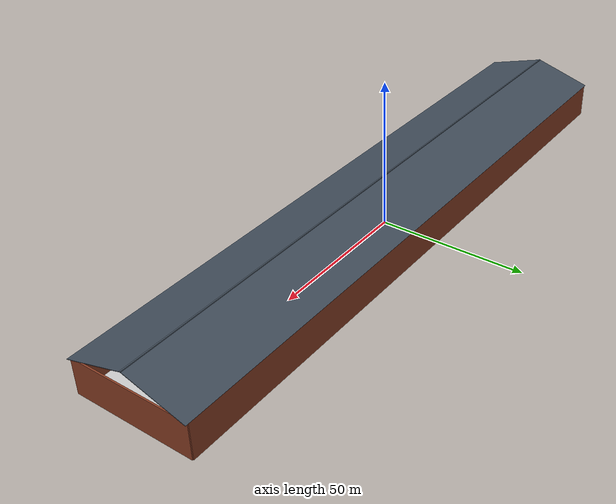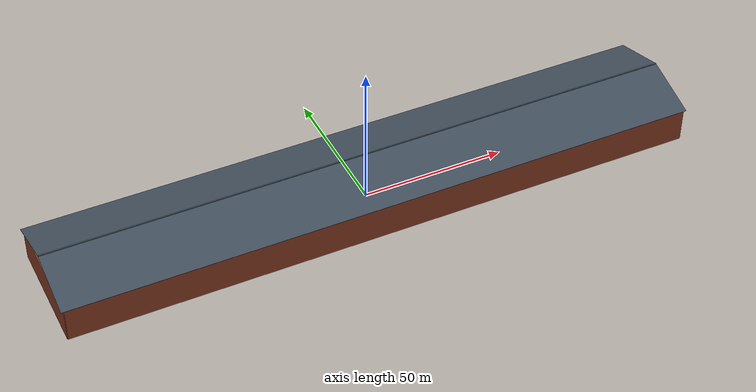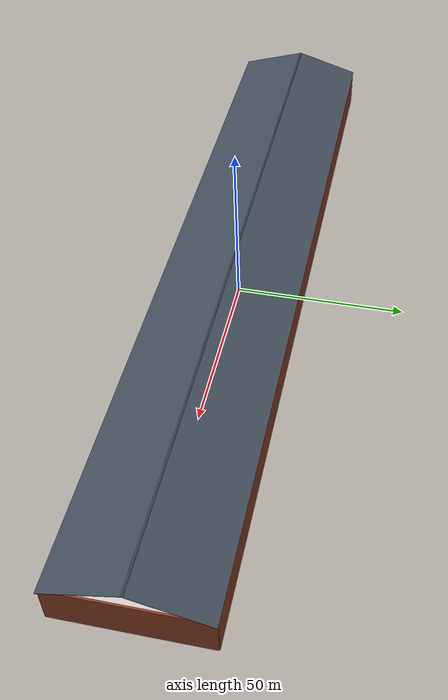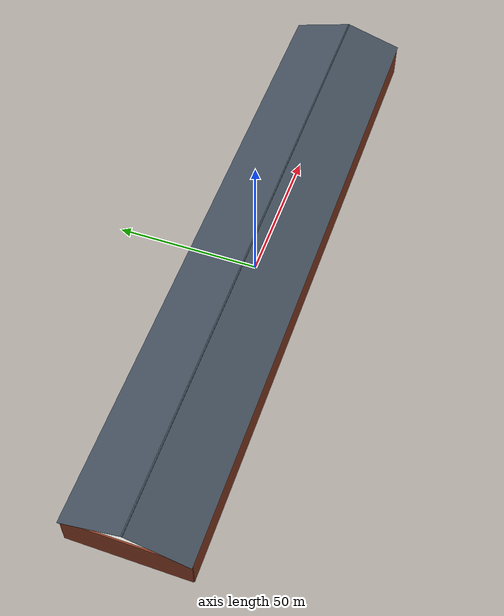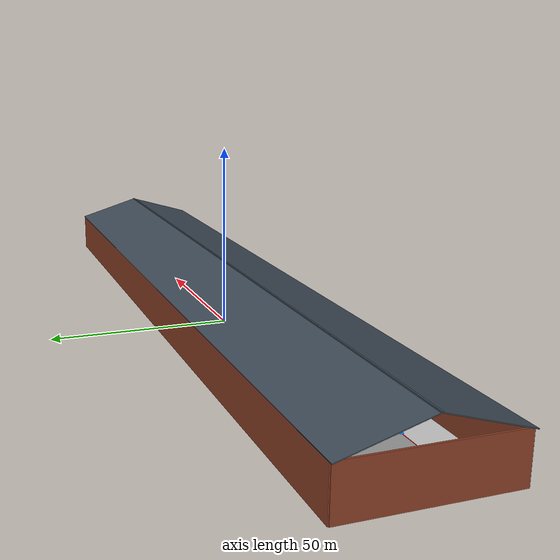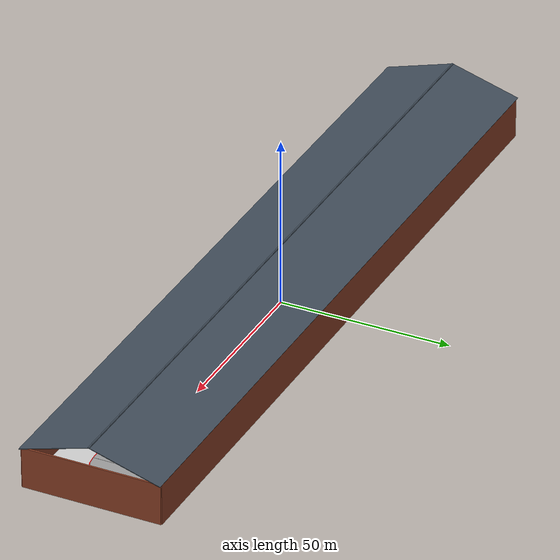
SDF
<sdf version="1.8">
 <world name="vector_logistics_world">
  <physics name="1ms" type="ignored">
   <max_step_size>0.001</max_step_size>
   <real_time_factor>1.0</real_time_factor>
  </physics>
  <plugin filename="gz-sim-physics-system" name="gz::sim::systems::Physics"/>
  <plugin filename="gz-sim-sensors-system" name="gz::sim::systems::Sensors"/>
  <plugin filename="gz-sim-user-commands-system" name="gz::sim::systems::UserCommands"/>
  <plugin filename="gz-sim-scene-broadcaster-system" name="gz::sim::systems::SceneBroadcaster"/>
  <scene>
   <ambient>0.5 0.5 0.5 1</ambient>
   <background>0.5 0.5 0.5 1</background>
   <grid>false</grid>
   <shadows>true</shadows>
  </scene>
  <light type="directional" name="sun">
   <pose>0 0 20 0 0 0</pose>
   <diffuse>0.8 0.8 0.8 1</diffuse>
   <specular>0.5 0.5 0.5 1</specular>
   <direction>-0.5 0.1 -0.9</direction>
  </light>
  <model name="concrete_floor">
   <static>true</static>
   <link name="link">
    <visual name="visual">
     <geometry><box><size>220 40 0.001</size></box></geometry>
     <material>
      <ambient>0.7 0.7 0.7 1</ambient>
      <diffuse>0.8 0.8 0.8 1</diffuse>
      <specular>0.1 0.1 0.1 1</specular>
     </material>
    </visual>
    <collision name="collision"><geometry><box><size>220 40 0.001</size></box></geometry></collision>
   </link>
  </model>
  <model name="left_red_curve">
   <static>true</static>
   <pose>-90 0 0.001 0 0 0</pose>
   <link name="link">
    <visual name="visual">
     <geometry><cylinder><radius>10.1</radius><length>0.001</length></cylinder></geometry>
     <material><ambient>1 0 0 1</ambient><diffuse>1 0 0 1</diffuse></material>
    </visual>
   </link>
  </model>
  <model name="left_grey_mask">
   <static>true</static>
   <pose>-90 0 0.002 0 0 0</pose>
   <link name="link">
    <visual name="visual">
     <geometry><cylinder><radius>9.9</radius><length>0.001</length></cylinder></geometry>
     <material><ambient>0.6 0.6 0.6 1</ambient><diffuse>0.6 0.6 0.6 1</diffuse></material>
    </visual>
   </link>
  </model>
  <model name="right_red_curve">
   <static>true</static>
   <pose>90 0 0.001 0 0 0</pose>
   <link name="link">
    <visual name="visual">
     <geometry><cylinder><radius>10.1</radius><length>0.001</length></cylinder></geometry>
     <material><ambient>1 0 0 1</ambient><diffuse>1 0 0 1</diffuse></material>
    </visual>
   </link>
  </model>
  <model name="right_grey_mask">
   <static>true</static>
   <pose>90 0 0.002 0 0 0</pose>
   <link name="link">
    <visual name="visual">
     <geometry><cylinder><radius>9.9</radius><length>0.001</length></cylinder></geometry>
     <material><ambient>0.6 0.6 0.6 1</ambient><diffuse>0.6 0.6 0.6 1</diffuse></material>
    </visual>
   </link>
  </model>
  <model name="center_mask">
   <static>true</static>
   <pose>0 0 0.003 0 0 0</pose>
   <link name="link">
    <visual name="visual">
     <geometry><box><size>180 20.2 0.001</size></box></geometry>
     <material><ambient>0.6 0.6 0.6 1</ambient><diffuse>0.6 0.6 0.6 1</diffuse></material>
    </visual>
   </link>
  </model>
  <model name="track_top">
   <static>true</static>
   <pose>0 10 0.004 0 0 0</pose>
   <link name="link">
    <visual name="visual">
     <geometry><box><size>180 0.2 0.001</size></box></geometry>
     <material><ambient>1 0 0 1</ambient><diffuse>1 0 0 1</diffuse></material>
    </visual>
   </link>
  </model>
  <model name="track_bottom">
   <static>true</static>
   <pose>0 -10 0.004 0 0 0</pose>
   <link name="link">
    <visual name="visual">
     <geometry><box><size>180 0.2 0.001</size></box></geometry>
     <material><ambient>1 0 0 1</ambient><diffuse>1 0 0 1</diffuse></material>
    </visual>
   </link>
  </model>
  <model name="station_01">
   <static>true</static>
   <pose>-82.5 -10 0.005 0 0 0</pose>
   <link name="link">
    <visual name="visual">
     <geometry><box><size>1 1 0.001</size></box></geometry>
     <material><ambient>0 0.5 1 1</ambient><diffuse>0 0.5 1 1</diffuse></material>
    </visual>
   </link>
  </model>
  <model name="station_02">
   <static>true</static>
   <pose>-67.5 -10 0.005 0 0 0</pose>
   <link name="link">
    <visual name="visual">
     <geometry><box><size>1 1 0.001</size></box></geometry>
     <material><ambient>0 0.5 1 1</ambient><diffuse>0 0.5 1 1</diffuse></material>
    </visual>
   </link>
  </model>
  <model name="station_03">
   <static>true</static>
   <pose>-52.5 -10 0.005 0 0 0</pose>
   <link name="link">
    <visual name="visual">
     <geometry><box><size>1 1 0.001</size></box></geometry>
     <material><ambient>0 0.5 1 1</ambient><diffuse>0 0.5 1 1</diffuse></material>
    </visual>
   </link>
  </model>
  <model name="station_04">
   <static>true</static>
   <pose>-37.5 -10 0.005 0 0 0</pose>
   <link name="link">
    <visual name="visual">
     <geometry><box><size>1 1 0.001</size></box></geometry>
     <material><ambient>0 0.5 1 1</ambient><diffuse>0 0.5 1 1</diffuse></material>
    </visual>
   </link>
  </model>
  <model name="station_05">
   <static>true</static>
   <pose>-22.5 -10 0.005 0 0 0</pose>
   <link name="link">
    <visual name="visual">
     <geometry><box><size>1 1 0.001</size></box></geometry>
     <material><ambient>0 0.5 1 1</ambient><diffuse>0 0.5 1 1</diffuse></material>
    </visual>
   </link>
  </model>
  <model name="station_06">
   <static>true</static>
   <pose>-7.5 -10 0.005 0 0 0</pose>
   <link name="link">
    <visual name="visual">
     <geometry><box><size>1 1 0.001</size></box></geometry>
     <material><ambient>0 0.5 1 1</ambient><diffuse>0 0.5 1 1</diffuse></material>
    </visual>
   </link>
  </model>
  <model name="station_07">
   <static>true</static>
   <pose>7.5 -10 0.005 0 0 0</pose>
   <link name="link">
    <visual name="visual">
     <geometry><box><size>1 1 0.001</size></box></geometry>
     <material><ambient>0 0.5 1 1</ambient><diffuse>0 0.5 1 1</diffuse></material>
    </visual>
   </link>
  </model>
  <model name="station_08">
   <static>true</static>
   <pose>22.5 -10 0.005 0 0 0</pose>
   <link name="link">
    <visual name="visual">
     <geometry><box><size>1 1 0.001</size></box></geometry>
     <material><ambient>0 0.5 1 1</ambient><diffuse>0 0.5 1 1</diffuse></material>
    </visual>
   </link>
  </model>
  <model name="station_09">
   <static>true</static>
   <pose>37.5 -10 0.005 0 0 0</pose>
   <link name="link">
    <visual name="visual">
     <geometry><box><size>1 1 0.001</size></box></geometry>
     <material><ambient>0 0.5 1 1</ambient><diffuse>0 0.5 1 1</diffuse></material>
    </visual>
   </link>
  </model>
  <model name="station_10">
   <static>true</static>
   <pose>52.5 -10 0.005 0 0 0</pose>
   <link name="link">
    <visual name="visual">
     <geometry><box><size>1 1 0.001</size></box></geometry>
     <material><ambient>0 0.5 1 1</ambient><diffuse>0 0.5 1 1</diffuse></material>
    </visual>
   </link>
  </model>
  <model name="station_11">
   <static>true</static>
   <pose>67.5 -10 0.005 0 0 0</pose>
   <link name="link">
    <visual name="visual">
     <geometry><box><size>1 1 0.001</size></box></geometry>
     <material><ambient>0 0.5 1 1</ambient><diffuse>0 0.5 1 1</diffuse></material>
    </visual>
   </link>
  </model>
  <model name="station_12">
   <static>true</static>
   <pose>82.5 -10 0.005 0 0 0</pose>
   <link name="link">
    <visual name="visual">
     <geometry><box><size>1 1 0.001</size></box></geometry>
     <material><ambient>0 0.5 1 1</ambient><diffuse>0 0.5 1 1</diffuse></material>
    </visual>
   </link>
  </model>
  <model name="wall_north">
   <static>true</static>
   <pose>0 20 6.0 0 0 0</pose>
   <link name="link">
    <visual name="visual">
     <geometry><box><size>220 0.5 12</size></box></geometry>
     <material>
      <ambient>0.55 0.25 0.15 1</ambient>
      <diffuse>0.55 0.25 0.15 1</diffuse>
      <specular>0.05 0.05 0.05 1</specular>
     </material>
    </visual>
    <collision name="collision"><geometry><box><size>220 0.5 12</size></box></geometry></collision>
   </link>
  </model>
  <model name="wall_south">
   <static>true</static>
   <pose>0 -20 6.0 0 0 0</pose>
   <link name="link">
    <visual name="visual">
     <geometry><box><size>220 0.5 12</size></box></geometry>
     <material>
      <ambient>0.55 0.25 0.15 1</ambient>
      <diffuse>0.55 0.25 0.15 1</diffuse>
      <specular>0.05 0.05 0.05 1</specular>
     </material>
    </visual>
    <collision name="collision"><geometry><box><size>220 0.5 12</size></box></geometry></collision>
   </link>
  </model>
  <model name="wall_east">
   <static>true</static>
   <pose>110 0 6.0 0 0 0</pose>
   <link name="link">
    <visual name="visual">
     <geometry><box><size>0.5 40 12</size></box></geometry>
     <material>
      <ambient>0.55 0.25 0.15 1</ambient>
      <diffuse>0.55 0.25 0.15 1</diffuse>
      <specular>0.05 0.05 0.05 1</specular>
     </material>
    </visual>
    <collision name="collision"><geometry><box><size>0.5 40 12</size></box></geometry></collision>
   </link>
  </model>
  <model name="wall_west">
   <static>true</static>
   <pose>-110 0 6.0 0 0 0</pose>
   <link name="link">
    <visual name="visual">
     <geometry><box><size>0.5 40 12</size></box></geometry>
     <material>
      <ambient>0.55 0.25 0.15 1</ambient>
      <diffuse>0.55 0.25 0.15 1</diffuse>
      <specular>0.05 0.05 0.05 1</specular>
     </material>
    </visual>
    <collision name="collision"><geometry><box><size>0.5 40 12</size></box></geometry></collision>
   </link>
  </model>
  <model name="warehouse_roof_north">
   <static>true</static>
   <pose>0 10.0 15.0 -0.291 0 0</pose>
   <link name="link">
    <visual name="visual">
     <cast_shadows>false</cast_shadows>
     <geometry><box><size>222 21.5 0.2</size></box></geometry>
     <material>
      <ambient>0.25 0.3 0.35 1</ambient>
      <diffuse>0.25 0.3 0.35 1</diffuse>
      <specular>0.4 0.4 0.4 1</specular>
     </material>
    </visual>
    <collision name="collision"><geometry><box><size>222 21.5 0.2</size></box></geometry></collision>
   </link>
  </model>
  <model name="warehouse_roof_south">
   <static>true</static>
   <pose>0 -10.0 15.0 0.291 0 0</pose>
   <link name="link">
    <visual name="visual">
     <cast_shadows>false</cast_shadows>
     <geometry><box><size>222 21.5 0.2</size></box></geometry>
     <material>
      <ambient>0.25 0.3 0.35 1</ambient>
      <diffuse>0.25 0.3 0.35 1</diffuse>
      <specular>0.4 0.4 0.4 1</specular>
     </material>
    </visual>
    <collision name="collision"><geometry><box><size>222 21.5 0.2</size></box></geometry></collision>
   </link>
  </model>
 </world>
</sdf>
